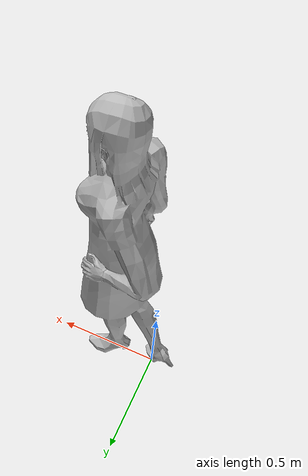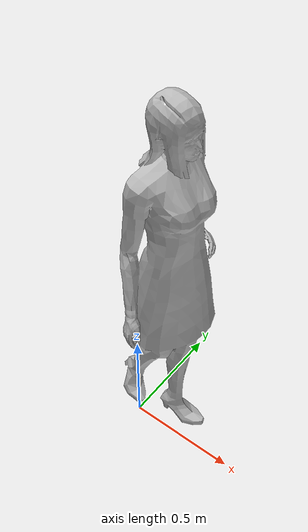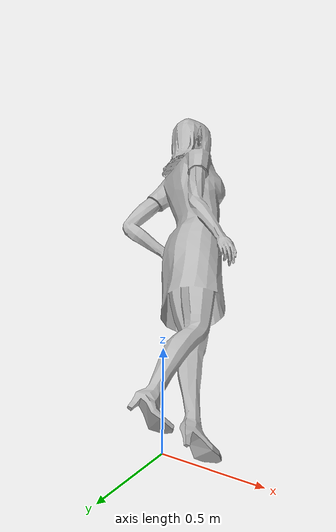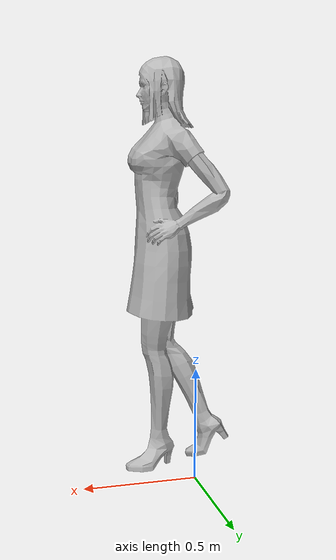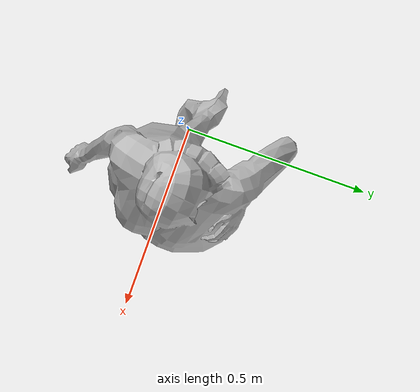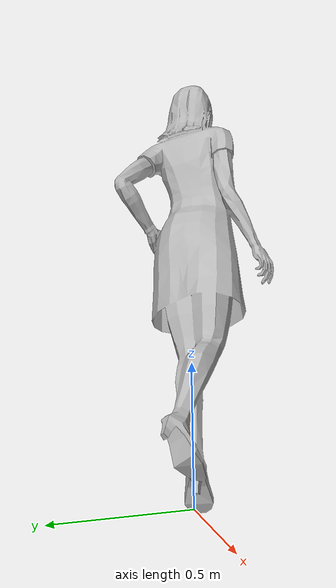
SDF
<?xml version='1.0'?>
<sdf version='1.6'>
	<model name='citizen_extras_female_02'>
	<static>false</static>
		<link name="base_link">
		<must_be_base_link>1</must_be_base_link>
		</link>
		<link name="link">
		<pose>0 0 0.1 0 0 1.57</pose>
     <inertial>
       <mass>20</mass>
       <inertia>
         <ixx>0.0</ixx>
         <ixy>0.0</ixy>
         <ixz>0.0</ixz>
         <iyy>0.0</iyy>
         <iyz>0.0</iyz>
         <izz>0.0</izz>
       </inertia>
     </inertial>
     <collision name="collision">
       <pose>0 0 0 0 0 0</pose>
       <geometry>
         <mesh>
           <uri>model://citizen_extras_female_02/meshes/mesh.dae</uri>
         </mesh>
       </geometry>
     </collision>
     <visual name="visual">
       <pose>0 0 0 0 0 0</pose>
       <geometry>
         <mesh>
           <uri>model://citizen_extras_female_02/meshes/mesh.dae</uri>
         </mesh>
       </geometry>
     </visual>
    </link>
			<pose>0.1 0 0 0 0 0</pose>
			<link name='chassis'>
			<inertial>
			</inertial>
			  <pose>0 0 .1 0 0 0</pose>
			  <collision name='collision'>
				<geometry>
				  <box>
				    <size>.4 .2 .1</size>
				  </box>
				</geometry>
			  </collision>

			  <collision name='caster_collision'>
				<pose>-0.15 0 -0.05 0 0 0</pose>
				<geometry>
				  <sphere>
				  <radius>.05</radius>
				</sphere>
			  </geometry>

			  <surface>
				<friction>
				  <ode>
				    <mu>0</mu>
				    <mu2>0</mu2>
				    <slip1>1.0</slip1>
				    <slip2>1.0</slip2>
				  </ode>
				</friction>
			  </surface>
			</collision>

		  </link>
		  <link name="left_wheel">
			<pose>0.1 0.13 0.1 0 1.5707 1.5707</pose>
			<collision name="collision">
			  <geometry>
				<cylinder>
				  <radius>.1</radius>
				  <length>.05</length>
				</cylinder>
			  </geometry>
			</collision>

		  </link>

		  <link name="right_wheel">
			<pose>0.1 -0.13 0.1 0 1.5707 1.5707</pose>
			<collision name="collision">
			  <geometry>
				<cylinder>
				  <radius>.1</radius>
				  <length>.05</length>
				</cylinder>
			  </geometry>
			</collision>

		  </link>
		   <joint type="revolute" name="left_wheel_hinge">
		    <pose>0 0 -0.03 0 0 0</pose>
		    <child>left_wheel</child>
		    <parent>chassis</parent>
		    <axis>
		      <xyz>0 0 1</xyz>
		    </axis>
		  </joint>

		  <joint type="revolute" name="right_wheel_hinge">
		    <pose>0 0 0.03 0 0 0</pose>
		    <child>right_wheel</child>
		    <parent>chassis</parent>
		    <axis>
		      <xyz>0 0 1</xyz>
		    </axis>
		  </joint>

		   <joint type="fixed" name="link_chassis">
		    <pose>0 0 0.03 0 0 0</pose>
		    <child>link</child>
		    <parent>chassis</parent>
		    <axis>
		      <xyz>0 0 1</xyz>
		    </axis>
		  </joint>

		  <joint type="fixed" name="base_link">
		    <pose>0 0 0.03 0 0 0</pose>
		    <child>chassis</child>
		    <parent>base_link</parent>
		    <axis>
		      <xyz>0 0 1</xyz>
		    </axis>
		  </joint>

		  	<plugin name="differential_drive_controller"
				filename="libgazebo_ros_diff_drive.so">
				<alwaysOn>true</alwaysOn>
				<updateRate>10</updateRate>
				<leftJoint>left_wheel_hinge</leftJoint>
				<rightJoint>right_wheel_hinge</rightJoint>
				<wheelSeparation>0.5</wheelSeparation>
				<wheelDiameter>0.1</wheelDiameter>
				<commandTopic>cmd_vel</commandTopic>
				<odometryTopic>odom</odometryTopic>
				<odometryFrame>odom</odometryFrame>
				<robotBaseFrame>base_footprint</robotBaseFrame>
				<publishWheelJointState>false</publishWheelJointState>
				<robotNamespace></robotNamespace>
				<rosDebugLevel>false</rosDebugLevel>
				<publishWheelTF>false</publishWheelTF>
				<publishOdomTF>false</publishOdomTF>
				<wheelAcceleration>0</wheelAcceleration>
				<wheelTorque>1.41</wheelTorque>
				<odometrySource>world</odometrySource>
				<publishTf>false</publishTf>
                <legacyMode>false</legacyMode>
			</plugin>
	</model>
</sdf>
